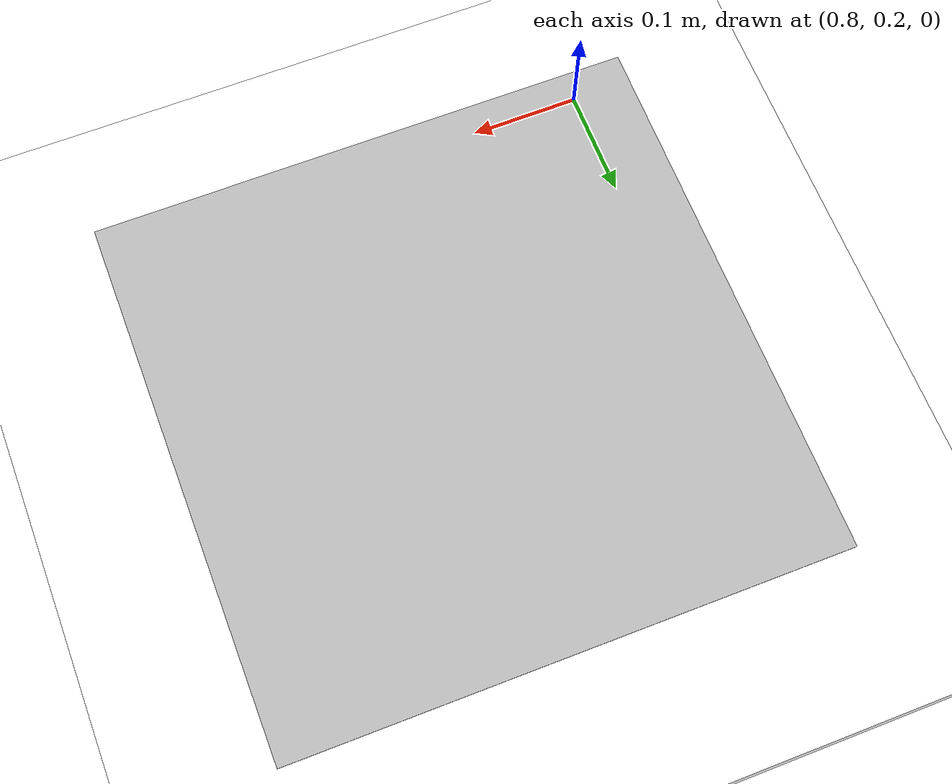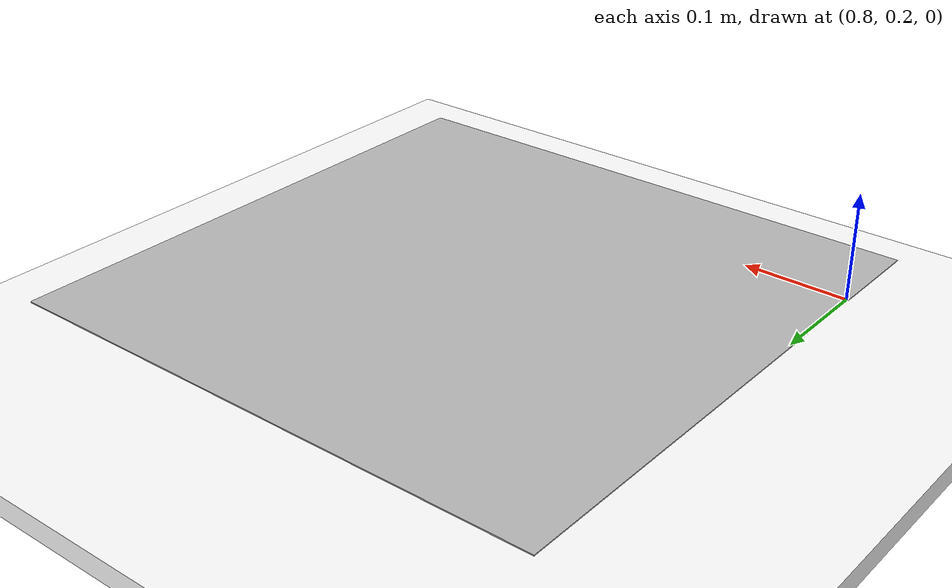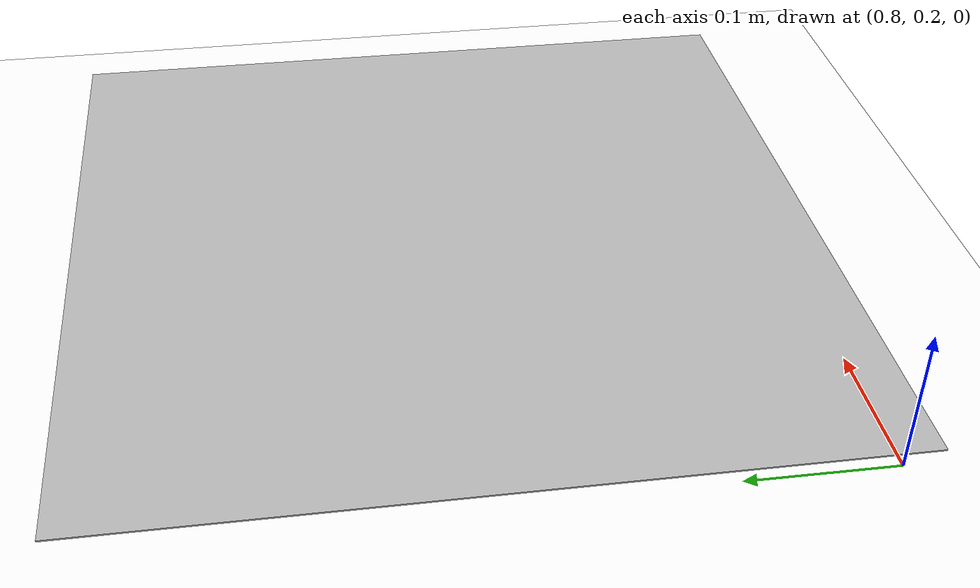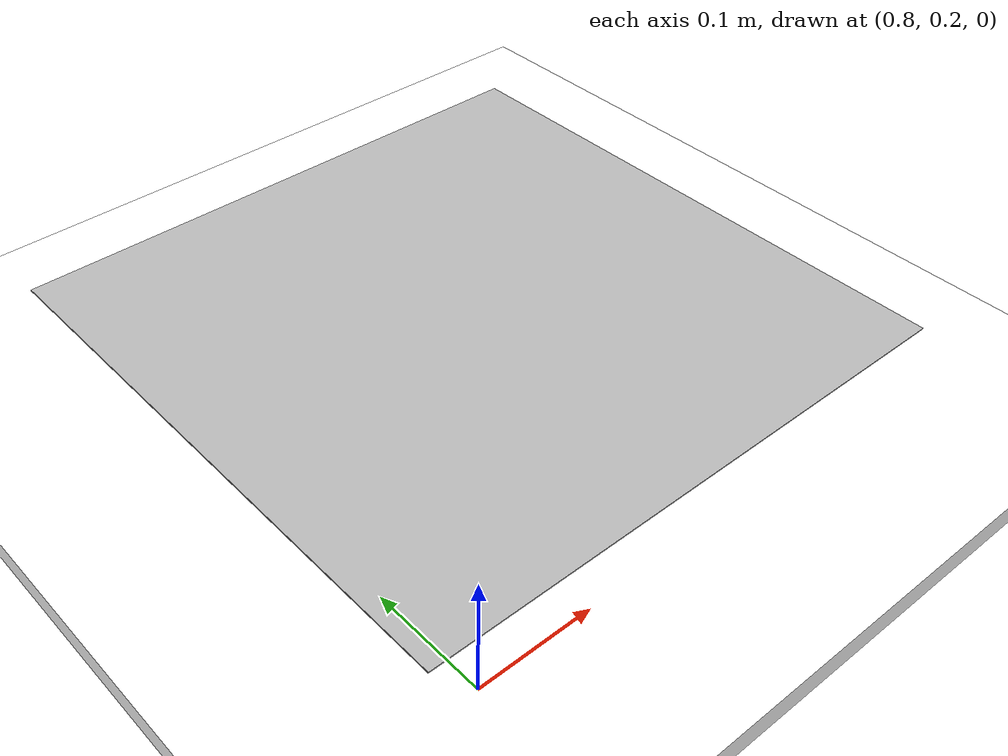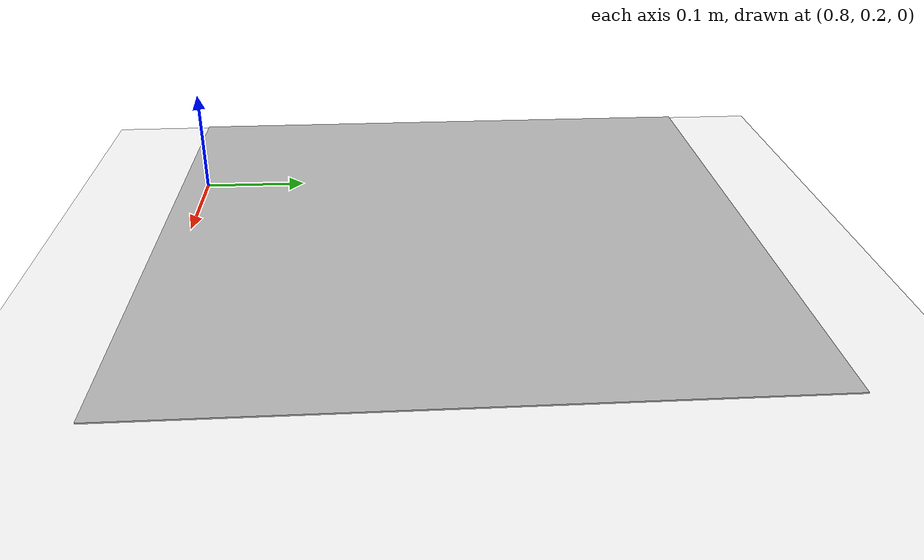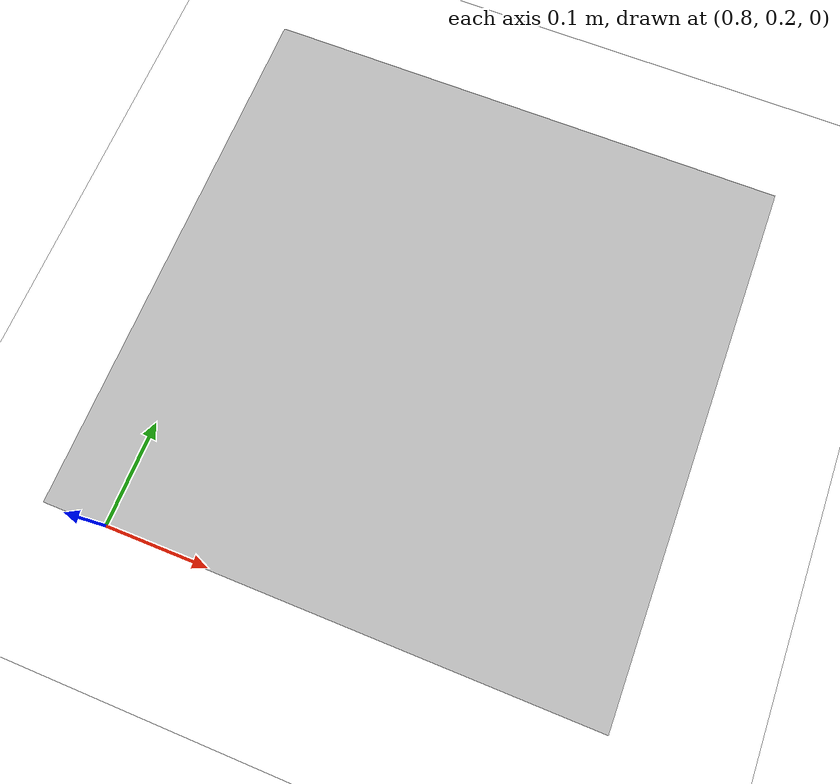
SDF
<?xml version="1.0" ?>
<sdf version="1.5">
  <world name="default">
    <!-- A global light source -->
    <include>
      <uri>model://sun</uri>
    </include>
    <include>
      <uri>model://parquet_plane</uri>
      <pose>0 0 -0.01 0 0 0</pose>
    </include>
    <include>
      <uri>model://aruco_100</uri>
      <pose>1.01 0.45 0.05 0 0 0.0</pose>
    </include>
    <scene>
      <ambient>0.8 0.8 0.8 1</ambient>
      <background>0.8 0.9 1 1</background>
      <shadows>false</shadows>
      <grid>false</grid>
      <origin_visual>false</origin_visual>
    </scene>

    <physics name='default_physics' default='0' type='ode'>
      <gravity>0 0 -9.8066</gravity>
      <ode>
        <solver>
          <type>quick</type>
          <iters>10</iters>
          <sor>1.3</sor>
          <use_dynamic_moi_rescaling>0</use_dynamic_moi_rescaling>
        </solver>
        <constraints>
          <cfm>0</cfm>
          <erp>0.2</erp>
          <contact_max_correcting_vel>100</contact_max_correcting_vel>
          <contact_surface_layer>0.001</contact_surface_layer>
        </constraints>
      </ode>
      <max_step_size>0.004</max_step_size>
      <real_time_factor>1</real_time_factor>
      <real_time_update_rate>250</real_time_update_rate>
      <magnetic_field>6.0e-6 2.3e-5 -4.2e-5</magnetic_field>
    </physics>
  </world>
</sdf>

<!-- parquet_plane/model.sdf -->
<sdf version="1.10">
  <model name="parquet_plane">
    <static>true</static>
    <link name="link">
      <collision name="collision">
        <geometry>
          <box>
            <size>200 200 0.02</size>
          </box>
        </geometry>
      </collision>
      <visual name="visual">
        <cast_shadows>false</cast_shadows>
        <geometry>
          <box>
            <size>200 200 0.02</size>
          </box>
        </geometry>
        <material>
          <ambient>0.8 0.8 0.8 1</ambient>
          <diffuse>1.0 1.0 1.0 1</diffuse>
          <specular>0.1 0.1 0.1 1</specular>
          <pbr>
            <metal>
              <albedo_map>model://parquet_plane/materials/textures/grass.png</albedo_map>
              <metalness>0.0</metalness>
              <roughness>0.9</roughness>
            </metal>
          </pbr>
        </material>
      </visual>
    </link>
  </model>
</sdf>

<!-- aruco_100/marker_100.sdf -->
<sdf version="1.5">
    <model name="aruco_100">
        <static>true</static>
        <link name="marker_100_link">
            <pose>0 0 1e-3 0 0 1.5707963267948966</pose>
            <visual name="visual_marker_100">
                <cast_shadows>false</cast_shadows>
                <geometry>
                    <box>
                        <size>0.5 0.5 1e-3</size>
                    </box>
                </geometry>
                <material>
                    <script>
                        <uri>model://aruco_100/materials/scripts</uri>
                        <uri>model://aruco_100/materials/textures</uri>
                        <name>aruco/marker_100</name>
                    </script>
                </material>
            </visual>
        </link>
    </model>
</sdf>
